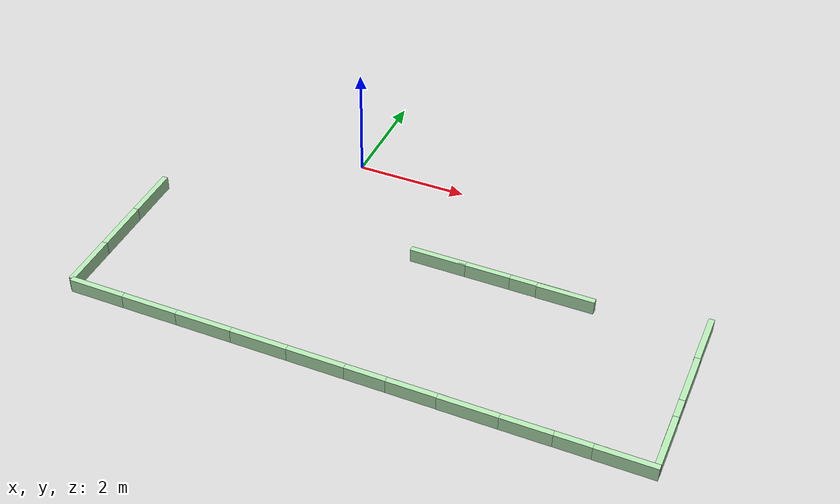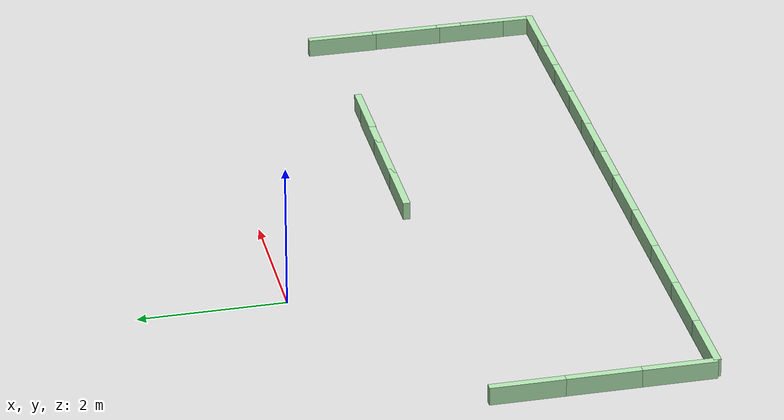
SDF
<sdf version="1.6">
 <world name="default">
  <model name="wall_100_25h_1_clone_9_clone_clone">
   <link name="link">
    <inertial>
     <mass>1</mass>
     <inertia>
      <ixx>0.166667</ixx>
      <ixy>0</ixy>
      <ixz>0</ixz>
      <iyy>0.166667</iyy>
      <iyz>0</iyz>
      <izz>0.166667</izz>
     </inertia>
    </inertial>
    <visual name="visual">
     <geometry><box><size>1 0.1 0.25</size></box></geometry>
     <material>
      <script><name>Gazebo/Grey</name><uri>file://media/materials/scripts/gazebo.material</uri></script>
      <ambient>0.3 0.5 0.3 1</ambient>
      <diffuse>0.7 0.9 0.7 1</diffuse>
      <specular>0.01 0.02 0.01 1</specular>
      <emissive>0 0 0 1</emissive>
      <lighting>1</lighting>
      <shader type="vertex"><normal_map>__default__</normal_map></shader>
     </material>
    </visual>
    <collision name="collision">
     <geometry><box><size>1 0.1 0.25</size></box></geometry>
     <surface>
      <friction>
       <ode><mu>1</mu><mu2>1</mu2><fdir1>0 0 0</fdir1><slip1>0</slip1><slip2>0</slip2></ode>
       <torsional>
        <coefficient>1</coefficient>
        <patch_radius>0</patch_radius>
        <surface_radius>0</surface_radius>
        <use_patch_radius>1</use_patch_radius>
        <ode><slip>0</slip></ode>
       </torsional>
      </friction>
      <bounce><restitution_coefficient>0</restitution_coefficient><threshold>1e+06</threshold></bounce>
      <contact>
       <collide_without_contact>0</collide_without_contact>
       <collide_without_contact_bitmask>1</collide_without_contact_bitmask>
       <collide_bitmask>1</collide_bitmask>
       <ode>
        <soft_cfm>0</soft_cfm>
        <soft_erp>0.2</soft_erp>
        <kp>1e+13</kp>
        <kd>1</kd>
        <max_vel>0.01</max_vel>
        <min_depth>0</min_depth>
       </ode>
       <bullet>
        <split_impulse>1</split_impulse>
        <split_impulse_penetration_threshold>-0.01</split_impulse_penetration_threshold>
        <soft_cfm>0</soft_cfm>
        <soft_erp>0.2</soft_erp>
        <kp>1e+13</kp>
        <kd>1</kd>
       </bullet>
      </contact>
     </surface>
    </collision>
   </link>
   <static>1</static>
   <pose>-3 -2.5 0.125 0 0.000404 -1.57111</pose>
  </model>
  <model name="wall_100_25h_1_clone_9_clone_clone_0">
   <link name="link">
    <inertial>
     <mass>1</mass>
     <inertia>
      <ixx>0.166667</ixx>
      <ixy>0</ixy>
      <ixz>0</ixz>
      <iyy>0.166667</iyy>
      <iyz>0</iyz>
      <izz>0.166667</izz>
     </inertia>
    </inertial>
    <visual name="visual">
     <geometry><box><size>1 0.1 0.25</size></box></geometry>
     <material>
      <script><name>Gazebo/Grey</name><uri>file://media/materials/scripts/gazebo.material</uri></script>
      <ambient>0.3 0.5 0.3 1</ambient>
      <diffuse>0.7 0.9 0.7 1</diffuse>
      <specular>0.01 0.02 0.01 1</specular>
      <emissive>0 0 0 1</emissive>
      <lighting>1</lighting>
      <shader type="vertex"><normal_map>__default__</normal_map></shader>
     </material>
    </visual>
    <collision name="collision">
     <geometry><box><size>1 0.1 0.25</size></box></geometry>
     <surface>
      <friction>
       <ode><mu>1</mu><mu2>1</mu2><fdir1>0 0 0</fdir1><slip1>0</slip1><slip2>0</slip2></ode>
       <torsional>
        <coefficient>1</coefficient>
        <patch_radius>0</patch_radius>
        <surface_radius>0</surface_radius>
        <use_patch_radius>1</use_patch_radius>
        <ode><slip>0</slip></ode>
       </torsional>
      </friction>
      <bounce><restitution_coefficient>0</restitution_coefficient><threshold>1e+06</threshold></bounce>
      <contact>
       <collide_without_contact>0</collide_without_contact>
       <collide_without_contact_bitmask>1</collide_without_contact_bitmask>
       <collide_bitmask>1</collide_bitmask>
       <ode>
        <soft_cfm>0</soft_cfm>
        <soft_erp>0.2</soft_erp>
        <kp>1e+13</kp>
        <kd>1</kd>
        <max_vel>0.01</max_vel>
        <min_depth>0</min_depth>
       </ode>
       <bullet>
        <split_impulse>1</split_impulse>
        <split_impulse_penetration_threshold>-0.01</split_impulse_penetration_threshold>
        <soft_cfm>0</soft_cfm>
        <soft_erp>0.2</soft_erp>
        <kp>1e+13</kp>
        <kd>1</kd>
       </bullet>
      </contact>
     </surface>
    </collision>
   </link>
   <static>1</static>
   <pose>-3 -3.5 0.125 0 0.000404 -1.57111</pose>
  </model>
  <model name="wall_100_25h_1_clone_9_clone_clone_1">
   <link name="link">
    <inertial>
     <mass>1</mass>
     <inertia>
      <ixx>0.166667</ixx>
      <ixy>0</ixy>
      <ixz>0</ixz>
      <iyy>0.166667</iyy>
      <iyz>0</iyz>
      <izz>0.166667</izz>
     </inertia>
    </inertial>
    <visual name="visual">
     <geometry><box><size>1 0.1 0.25</size></box></geometry>
     <material>
      <script><name>Gazebo/Grey</name><uri>file://media/materials/scripts/gazebo.material</uri></script>
      <ambient>0.3 0.5 0.3 1</ambient>
      <diffuse>0.7 0.9 0.7 1</diffuse>
      <specular>0.01 0.02 0.01 1</specular>
      <emissive>0 0 0 1</emissive>
      <lighting>1</lighting>
      <shader type="vertex"><normal_map>__default__</normal_map></shader>
     </material>
    </visual>
    <collision name="collision">
     <geometry><box><size>1 0.1 0.25</size></box></geometry>
     <surface>
      <friction>
       <ode><mu>1</mu><mu2>1</mu2><fdir1>0 0 0</fdir1><slip1>0</slip1><slip2>0</slip2></ode>
       <torsional>
        <coefficient>1</coefficient>
        <patch_radius>0</patch_radius>
        <surface_radius>0</surface_radius>
        <use_patch_radius>1</use_patch_radius>
        <ode><slip>0</slip></ode>
       </torsional>
      </friction>
      <bounce><restitution_coefficient>0</restitution_coefficient><threshold>1e+06</threshold></bounce>
      <contact>
       <collide_without_contact>0</collide_without_contact>
       <collide_without_contact_bitmask>1</collide_without_contact_bitmask>
       <collide_bitmask>1</collide_bitmask>
       <ode>
        <soft_cfm>0</soft_cfm>
        <soft_erp>0.2</soft_erp>
        <kp>1e+13</kp>
        <kd>1</kd>
        <max_vel>0.01</max_vel>
        <min_depth>0</min_depth>
       </ode>
       <bullet>
        <split_impulse>1</split_impulse>
        <split_impulse_penetration_threshold>-0.01</split_impulse_penetration_threshold>
        <soft_cfm>0</soft_cfm>
        <soft_erp>0.2</soft_erp>
        <kp>1e+13</kp>
        <kd>1</kd>
       </bullet>
      </contact>
     </surface>
    </collision>
   </link>
   <static>1</static>
   <pose>-3 -4.5 0.125 0 0.000404 -1.57111</pose>
  </model>
  <model name="wall_100_25h_1_clone_3_clone">
   <link name="link">
    <inertial>
     <mass>1</mass>
     <inertia>
      <ixx>0.166667</ixx>
      <ixy>0</ixy>
      <ixz>0</ixz>
      <iyy>0.166667</iyy>
      <iyz>0</iyz>
      <izz>0.166667</izz>
     </inertia>
    </inertial>
    <visual name="visual">
     <geometry><box><size>1 0.1 0.25</size></box></geometry>
     <material>
      <script><name>Gazebo/Grey</name><uri>file://media/materials/scripts/gazebo.material</uri></script>
      <ambient>0.3 0.5 0.3 1</ambient>
      <diffuse>0.7 0.9 0.7 1</diffuse>
      <specular>0.01 0.02 0.01 1</specular>
      <emissive>0 0 0 1</emissive>
      <lighting>1</lighting>
      <shader type="vertex"><normal_map>__default__</normal_map></shader>
     </material>
    </visual>
    <collision name="collision">
     <geometry><box><size>1 0.1 0.25</size></box></geometry>
     <surface>
      <friction>
       <ode><mu>1</mu><mu2>1</mu2><fdir1>0 0 0</fdir1><slip1>0</slip1><slip2>0</slip2></ode>
       <torsional>
        <coefficient>1</coefficient>
        <patch_radius>0</patch_radius>
        <surface_radius>0</surface_radius>
        <use_patch_radius>1</use_patch_radius>
        <ode><slip>0</slip></ode>
       </torsional>
      </friction>
      <bounce><restitution_coefficient>0</restitution_coefficient><threshold>1e+06</threshold></bounce>
      <contact>
       <collide_without_contact>0</collide_without_contact>
       <collide_without_contact_bitmask>1</collide_without_contact_bitmask>
       <collide_bitmask>1</collide_bitmask>
       <ode>
        <soft_cfm>0</soft_cfm>
        <soft_erp>0.2</soft_erp>
        <kp>1e+13</kp>
        <kd>1</kd>
        <max_vel>0.01</max_vel>
        <min_depth>0</min_depth>
       </ode>
       <bullet>
        <split_impulse>1</split_impulse>
        <split_impulse_penetration_threshold>-0.01</split_impulse_penetration_threshold>
        <soft_cfm>0</soft_cfm>
        <soft_erp>0.2</soft_erp>
        <kp>1e+13</kp>
        <kd>1</kd>
       </bullet>
      </contact>
     </surface>
    </collision>
   </link>
   <static>1</static>
   <pose>-2.5 -5 0.125 0.000404 -0 0</pose>
  </model>
  <model name="wall_100_25h_1_clone_3_clone_0">
   <link name="link">
    <inertial>
     <mass>1</mass>
     <inertia>
      <ixx>0.166667</ixx>
      <ixy>0</ixy>
      <ixz>0</ixz>
      <iyy>0.166667</iyy>
      <iyz>0</iyz>
      <izz>0.166667</izz>
     </inertia>
    </inertial>
    <visual name="visual">
     <geometry><box><size>1 0.1 0.25</size></box></geometry>
     <material>
      <script><name>Gazebo/Grey</name><uri>file://media/materials/scripts/gazebo.material</uri></script>
      <ambient>0.3 0.5 0.3 1</ambient>
      <diffuse>0.7 0.9 0.7 1</diffuse>
      <specular>0.01 0.02 0.01 1</specular>
      <emissive>0 0 0 1</emissive>
      <lighting>1</lighting>
      <shader type="vertex"><normal_map>__default__</normal_map></shader>
     </material>
    </visual>
    <collision name="collision">
     <geometry><box><size>1 0.1 0.25</size></box></geometry>
     <surface>
      <friction>
       <ode><mu>1</mu><mu2>1</mu2><fdir1>0 0 0</fdir1><slip1>0</slip1><slip2>0</slip2></ode>
       <torsional>
        <coefficient>1</coefficient>
        <patch_radius>0</patch_radius>
        <surface_radius>0</surface_radius>
        <use_patch_radius>1</use_patch_radius>
        <ode><slip>0</slip></ode>
       </torsional>
      </friction>
      <bounce><restitution_coefficient>0</restitution_coefficient><threshold>1e+06</threshold></bounce>
      <contact>
       <collide_without_contact>0</collide_without_contact>
       <collide_without_contact_bitmask>1</collide_without_contact_bitmask>
       <collide_bitmask>1</collide_bitmask>
       <ode>
        <soft_cfm>0</soft_cfm>
        <soft_erp>0.2</soft_erp>
        <kp>1e+13</kp>
        <kd>1</kd>
        <max_vel>0.01</max_vel>
        <min_depth>0</min_depth>
       </ode>
       <bullet>
        <split_impulse>1</split_impulse>
        <split_impulse_penetration_threshold>-0.01</split_impulse_penetration_threshold>
        <soft_cfm>0</soft_cfm>
        <soft_erp>0.2</soft_erp>
        <kp>1e+13</kp>
        <kd>1</kd>
       </bullet>
      </contact>
     </surface>
    </collision>
   </link>
   <static>1</static>
   <pose>-1.5 -5 0.125 0.000404 -0 0</pose>
  </model>
  <model name="wall_100_25h_1_clone_3_clone_1">
   <link name="link">
    <inertial>
     <mass>1</mass>
     <inertia>
      <ixx>0.166667</ixx>
      <ixy>0</ixy>
      <ixz>0</ixz>
      <iyy>0.166667</iyy>
      <iyz>0</iyz>
      <izz>0.166667</izz>
     </inertia>
    </inertial>
    <visual name="visual">
     <geometry><box><size>1 0.1 0.25</size></box></geometry>
     <material>
      <script><name>Gazebo/Grey</name><uri>file://media/materials/scripts/gazebo.material</uri></script>
      <ambient>0.3 0.5 0.3 1</ambient>
      <diffuse>0.7 0.9 0.7 1</diffuse>
      <specular>0.01 0.02 0.01 1</specular>
      <emissive>0 0 0 1</emissive>
      <lighting>1</lighting>
      <shader type="vertex"><normal_map>__default__</normal_map></shader>
     </material>
    </visual>
    <collision name="collision">
     <geometry><box><size>1 0.1 0.25</size></box></geometry>
     <surface>
      <friction>
       <ode><mu>1</mu><mu2>1</mu2><fdir1>0 0 0</fdir1><slip1>0</slip1><slip2>0</slip2></ode>
       <torsional>
        <coefficient>1</coefficient>
        <patch_radius>0</patch_radius>
        <surface_radius>0</surface_radius>
        <use_patch_radius>1</use_patch_radius>
        <ode><slip>0</slip></ode>
       </torsional>
      </friction>
      <bounce><restitution_coefficient>0</restitution_coefficient><threshold>1e+06</threshold></bounce>
      <contact>
       <collide_without_contact>0</collide_without_contact>
       <collide_without_contact_bitmask>1</collide_without_contact_bitmask>
       <collide_bitmask>1</collide_bitmask>
       <ode>
        <soft_cfm>0</soft_cfm>
        <soft_erp>0.2</soft_erp>
        <kp>1e+13</kp>
        <kd>1</kd>
        <max_vel>0.01</max_vel>
        <min_depth>0</min_depth>
       </ode>
       <bullet>
        <split_impulse>1</split_impulse>
        <split_impulse_penetration_threshold>-0.01</split_impulse_penetration_threshold>
        <soft_cfm>0</soft_cfm>
        <soft_erp>0.2</soft_erp>
        <kp>1e+13</kp>
        <kd>1</kd>
       </bullet>
      </contact>
     </surface>
    </collision>
   </link>
   <static>1</static>
   <pose>-0.5 -5 0.125 0.000404 -0 0</pose>
  </model>
  <model name="wall_100_25h_1_clone_3_clone_2">
   <link name="link">
    <inertial>
     <mass>1</mass>
     <inertia>
      <ixx>0.166667</ixx>
      <ixy>0</ixy>
      <ixz>0</ixz>
      <iyy>0.166667</iyy>
      <iyz>0</iyz>
      <izz>0.166667</izz>
     </inertia>
    </inertial>
    <visual name="visual">
     <geometry><box><size>1 0.1 0.25</size></box></geometry>
     <material>
      <script><name>Gazebo/Grey</name><uri>file://media/materials/scripts/gazebo.material</uri></script>
      <ambient>0.3 0.5 0.3 1</ambient>
      <diffuse>0.7 0.9 0.7 1</diffuse>
      <specular>0.01 0.02 0.01 1</specular>
      <emissive>0 0 0 1</emissive>
      <lighting>1</lighting>
      <shader type="vertex"><normal_map>__default__</normal_map></shader>
     </material>
    </visual>
    <collision name="collision">
     <geometry><box><size>1 0.1 0.25</size></box></geometry>
     <surface>
      <friction>
       <ode><mu>1</mu><mu2>1</mu2><fdir1>0 0 0</fdir1><slip1>0</slip1><slip2>0</slip2></ode>
       <torsional>
        <coefficient>1</coefficient>
        <patch_radius>0</patch_radius>
        <surface_radius>0</surface_radius>
        <use_patch_radius>1</use_patch_radius>
        <ode><slip>0</slip></ode>
       </torsional>
      </friction>
      <bounce><restitution_coefficient>0</restitution_coefficient><threshold>1e+06</threshold></bounce>
      <contact>
       <collide_without_contact>0</collide_without_contact>
       <collide_without_contact_bitmask>1</collide_without_contact_bitmask>
       <collide_bitmask>1</collide_bitmask>
       <ode>
        <soft_cfm>0</soft_cfm>
        <soft_erp>0.2</soft_erp>
        <kp>1e+13</kp>
        <kd>1</kd>
        <max_vel>0.01</max_vel>
        <min_depth>0</min_depth>
       </ode>
       <bullet>
        <split_impulse>1</split_impulse>
        <split_impulse_penetration_threshold>-0.01</split_impulse_penetration_threshold>
        <soft_cfm>0</soft_cfm>
        <soft_erp>0.2</soft_erp>
        <kp>1e+13</kp>
        <kd>1</kd>
       </bullet>
      </contact>
     </surface>
    </collision>
   </link>
   <static>1</static>
   <pose>0.5 -5 0.125 0.000404 -0 0</pose>
  </model>
  <model name="wall_100_25h_1_clone_3_clone_3">
   <link name="link">
    <inertial>
     <mass>1</mass>
     <inertia>
      <ixx>0.166667</ixx>
      <ixy>0</ixy>
      <ixz>0</ixz>
      <iyy>0.166667</iyy>
      <iyz>0</iyz>
      <izz>0.166667</izz>
     </inertia>
    </inertial>
    <visual name="visual">
     <geometry><box><size>1 0.1 0.25</size></box></geometry>
     <material>
      <script><name>Gazebo/Grey</name><uri>file://media/materials/scripts/gazebo.material</uri></script>
      <ambient>0.3 0.5 0.3 1</ambient>
      <diffuse>0.7 0.9 0.7 1</diffuse>
      <specular>0.01 0.02 0.01 1</specular>
      <emissive>0 0 0 1</emissive>
      <lighting>1</lighting>
      <shader type="vertex"><normal_map>__default__</normal_map></shader>
     </material>
    </visual>
    <collision name="collision">
     <geometry><box><size>1 0.1 0.25</size></box></geometry>
     <surface>
      <friction>
       <ode><mu>1</mu><mu2>1</mu2><fdir1>0 0 0</fdir1><slip1>0</slip1><slip2>0</slip2></ode>
       <torsional>
        <coefficient>1</coefficient>
        <patch_radius>0</patch_radius>
        <surface_radius>0</surface_radius>
        <use_patch_radius>1</use_patch_radius>
        <ode><slip>0</slip></ode>
       </torsional>
      </friction>
      <bounce><restitution_coefficient>0</restitution_coefficient><threshold>1e+06</threshold></bounce>
      <contact>
       <collide_without_contact>0</collide_without_contact>
       <collide_without_contact_bitmask>1</collide_without_contact_bitmask>
       <collide_bitmask>1</collide_bitmask>
       <ode>
        <soft_cfm>0</soft_cfm>
        <soft_erp>0.2</soft_erp>
        <kp>1e+13</kp>
        <kd>1</kd>
        <max_vel>0.01</max_vel>
        <min_depth>0</min_depth>
       </ode>
       <bullet>
        <split_impulse>1</split_impulse>
        <split_impulse_penetration_threshold>-0.01</split_impulse_penetration_threshold>
        <soft_cfm>0</soft_cfm>
        <soft_erp>0.2</soft_erp>
        <kp>1e+13</kp>
        <kd>1</kd>
       </bullet>
      </contact>
     </surface>
    </collision>
   </link>
   <static>1</static>
   <pose>1.5 -5 0.125 0.000404 -0 0</pose>
  </model>
  <model name="wall_100_25h_1_clone_3_clone_4">
   <link name="link">
    <inertial>
     <mass>1</mass>
     <inertia>
      <ixx>0.166667</ixx>
      <ixy>0</ixy>
      <ixz>0</ixz>
      <iyy>0.166667</iyy>
      <iyz>0</iyz>
      <izz>0.166667</izz>
     </inertia>
    </inertial>
    <visual name="visual">
     <geometry><box><size>1 0.1 0.25</size></box></geometry>
     <material>
      <script><name>Gazebo/Grey</name><uri>file://media/materials/scripts/gazebo.material</uri></script>
      <ambient>0.3 0.5 0.3 1</ambient>
      <diffuse>0.7 0.9 0.7 1</diffuse>
      <specular>0.01 0.02 0.01 1</specular>
      <emissive>0 0 0 1</emissive>
      <lighting>1</lighting>
      <shader type="vertex"><normal_map>__default__</normal_map></shader>
     </material>
    </visual>
    <collision name="collision">
     <geometry><box><size>1 0.1 0.25</size></box></geometry>
     <surface>
      <friction>
       <ode><mu>1</mu><mu2>1</mu2><fdir1>0 0 0</fdir1><slip1>0</slip1><slip2>0</slip2></ode>
       <torsional>
        <coefficient>1</coefficient>
        <patch_radius>0</patch_radius>
        <surface_radius>0</surface_radius>
        <use_patch_radius>1</use_patch_radius>
        <ode><slip>0</slip></ode>
       </torsional>
      </friction>
      <bounce><restitution_coefficient>0</restitution_coefficient><threshold>1e+06</threshold></bounce>
      <contact>
       <collide_without_contact>0</collide_without_contact>
       <collide_without_contact_bitmask>1</collide_without_contact_bitmask>
       <collide_bitmask>1</collide_bitmask>
       <ode>
        <soft_cfm>0</soft_cfm>
        <soft_erp>0.2</soft_erp>
        <kp>1e+13</kp>
        <kd>1</kd>
        <max_vel>0.01</max_vel>
        <min_depth>0</min_depth>
       </ode>
       <bullet>
        <split_impulse>1</split_impulse>
        <split_impulse_penetration_threshold>-0.01</split_impulse_penetration_threshold>
        <soft_cfm>0</soft_cfm>
        <soft_erp>0.2</soft_erp>
        <kp>1e+13</kp>
        <kd>1</kd>
       </bullet>
      </contact>
     </surface>
    </collision>
   </link>
   <static>1</static>
   <pose>2.5 -5 0.125 0.000404 -0 0</pose>
  </model>
  <model name="wall_100_25h_1_clone_7_clone_clone_2">
   <link name="link">
    <inertial>
     <mass>1</mass>
     <inertia>
      <ixx>0.166667</ixx>
      <ixy>0</ixy>
      <ixz>0</ixz>
      <iyy>0.166667</iyy>
      <iyz>0</iyz>
      <izz>0.166667</izz>
     </inertia>
    </inertial>
    <visual name="visual">
     <geometry><box><size>1 0.1 0.25</size></box></geometry>
     <material>
      <script><name>Gazebo/Grey</name><uri>file://media/materials/scripts/gazebo.material</uri></script>
      <ambient>0.3 0.5 0.3 1</ambient>
      <diffuse>0.7 0.9 0.7 1</diffuse>
      <specular>0.01 0.02 0.01 1</specular>
      <emissive>0 0 0 1</emissive>
      <lighting>1</lighting>
      <shader type="vertex"><normal_map>__default__</normal_map></shader>
     </material>
    </visual>
    <collision name="collision">
     <geometry><box><size>1 0.1 0.25</size></box></geometry>
     <surface>
      <friction>
       <ode><mu>1</mu><mu2>1</mu2><fdir1>0 0 0</fdir1><slip1>0</slip1><slip2>0</slip2></ode>
       <torsional>
        <coefficient>1</coefficient>
        <patch_radius>0</patch_radius>
        <surface_radius>0</surface_radius>
        <use_patch_radius>1</use_patch_radius>
        <ode><slip>0</slip></ode>
       </torsional>
      </friction>
      <bounce><restitution_coefficient>0</restitution_coefficient><threshold>1e+06</threshold></bounce>
      <contact>
       <collide_without_contact>0</collide_without_contact>
       <collide_without_contact_bitmask>1</collide_without_contact_bitmask>
       <collide_bitmask>1</collide_bitmask>
       <ode>
        <soft_cfm>0</soft_cfm>
        <soft_erp>0.2</soft_erp>
        <kp>1e+13</kp>
        <kd>1</kd>
        <max_vel>0.01</max_vel>
        <min_depth>0</min_depth>
       </ode>
       <bullet>
        <split_impulse>1</split_impulse>
        <split_impulse_penetration_threshold>-0.01</split_impulse_penetration_threshold>
        <soft_cfm>0</soft_cfm>
        <soft_erp>0.2</soft_erp>
        <kp>1e+13</kp>
        <kd>1</kd>
       </bullet>
      </contact>
     </surface>
    </collision>
   </link>
   <static>1</static>
   <pose>2.34861 -2.01817 0.125 0.000404 -0 0</pose>
  </model>
  <model name="wall_100_25h_1_clone_7_clone_clone_3">
   <link name="link">
    <inertial>
     <mass>1</mass>
     <inertia>
      <ixx>0.166667</ixx>
      <ixy>0</ixy>
      <ixz>0</ixz>
      <iyy>0.166667</iyy>
      <iyz>0</iyz>
      <izz>0.166667</izz>
     </inertia>
    </inertial>
    <visual name="visual">
     <geometry><box><size>1 0.1 0.25</size></box></geometry>
     <material>
      <script><name>Gazebo/Grey</name><uri>file://media/materials/scripts/gazebo.material</uri></script>
      <ambient>0.3 0.5 0.3 1</ambient>
      <diffuse>0.7 0.9 0.7 1</diffuse>
      <specular>0.01 0.02 0.01 1</specular>
      <emissive>0 0 0 1</emissive>
      <lighting>1</lighting>
      <shader type="vertex"><normal_map>__default__</normal_map></shader>
     </material>
    </visual>
    <collision name="collision">
     <geometry><box><size>1 0.1 0.25</size></box></geometry>
     <surface>
      <friction>
       <ode><mu>1</mu><mu2>1</mu2><fdir1>0 0 0</fdir1><slip1>0</slip1><slip2>0</slip2></ode>
       <torsional>
        <coefficient>1</coefficient>
        <patch_radius>0</patch_radius>
        <surface_radius>0</surface_radius>
        <use_patch_radius>1</use_patch_radius>
        <ode><slip>0</slip></ode>
       </torsional>
      </friction>
      <bounce><restitution_coefficient>0</restitution_coefficient><threshold>1e+06</threshold></bounce>
      <contact>
       <collide_without_contact>0</collide_without_contact>
       <collide_without_contact_bitmask>1</collide_without_contact_bitmask>
       <collide_bitmask>1</collide_bitmask>
       <ode>
        <soft_cfm>0</soft_cfm>
        <soft_erp>0.2</soft_erp>
        <kp>1e+13</kp>
        <kd>1</kd>
        <max_vel>0.01</max_vel>
        <min_depth>0</min_depth>
       </ode>
       <bullet>
        <split_impulse>1</split_impulse>
        <split_impulse_penetration_threshold>-0.01</split_impulse_penetration_threshold>
        <soft_cfm>0</soft_cfm>
        <soft_erp>0.2</soft_erp>
        <kp>1e+13</kp>
        <kd>1</kd>
       </bullet>
      </contact>
     </surface>
    </collision>
   </link>
   <static>1</static>
   <pose>3.2209 -2.01804 0.125 0.000404 -0 0</pose>
  </model>
  <model name="wall_100_25h_1_clone_7_clone_clone_4">
   <link name="link">
    <inertial>
     <mass>1</mass>
     <inertia>
      <ixx>0.166667</ixx>
      <ixy>0</ixy>
      <ixz>0</ixz>
      <iyy>0.166667</iyy>
      <iyz>0</iyz>
      <izz>0.166667</izz>
     </inertia>
    </inertial>
    <visual name="visual">
     <geometry><box><size>1 0.1 0.25</size></box></geometry>
     <material>
      <script><name>Gazebo/Grey</name><uri>file://media/materials/scripts/gazebo.material</uri></script>
      <ambient>0.3 0.5 0.3 1</ambient>
      <diffuse>0.7 0.9 0.7 1</diffuse>
      <specular>0.01 0.02 0.01 1</specular>
      <emissive>0 0 0 1</emissive>
      <lighting>1</lighting>
      <shader type="vertex"><normal_map>__default__</normal_map></shader>
     </material>
    </visual>
    <collision name="collision">
     <geometry><box><size>1 0.1 0.25</size></box></geometry>
     <surface>
      <friction>
       <ode><mu>1</mu><mu2>1</mu2><fdir1>0 0 0</fdir1><slip1>0</slip1><slip2>0</slip2></ode>
       <torsional>
        <coefficient>1</coefficient>
        <patch_radius>0</patch_radius>
        <surface_radius>0</surface_radius>
        <use_patch_radius>1</use_patch_radius>
        <ode><slip>0</slip></ode>
       </torsional>
      </friction>
      <bounce><restitution_coefficient>0</restitution_coefficient><threshold>1e+06</threshold></bounce>
      <contact>
       <collide_without_contact>0</collide_without_contact>
       <collide_without_contact_bitmask>1</collide_without_contact_bitmask>
       <collide_bitmask>1</collide_bitmask>
       <ode>
        <soft_cfm>0</soft_cfm>
        <soft_erp>0.2</soft_erp>
        <kp>1e+13</kp>
        <kd>1</kd>
        <max_vel>0.01</max_vel>
        <min_depth>0</min_depth>
       </ode>
       <bullet>
        <split_impulse>1</split_impulse>
        <split_impulse_penetration_threshold>-0.01</split_impulse_penetration_threshold>
        <soft_cfm>0</soft_cfm>
        <soft_erp>0.2</soft_erp>
        <kp>1e+13</kp>
        <kd>1</kd>
       </bullet>
      </contact>
     </surface>
    </collision>
   </link>
   <static>1</static>
   <pose>4.139 -2.01913 0.125 0.000404 -0 0</pose>
  </model>
  <model name="wall_100_25h_1_clone_7_clone_clone_4_clone">
   <link name="link">
    <inertial>
     <mass>1</mass>
     <inertia>
      <ixx>0.166667</ixx>
      <ixy>0</ixy>
      <ixz>0</ixz>
      <iyy>0.166667</iyy>
      <iyz>0</iyz>
      <izz>0.166667</izz>
     </inertia>
    </inertial>
    <visual name="visual">
     <geometry><box><size>1 0.1 0.25</size></box></geometry>
     <material>
      <script><name>Gazebo/Grey</name><uri>file://media/materials/scripts/gazebo.material</uri></script>
      <ambient>0.3 0.5 0.3 1</ambient>
      <diffuse>0.7 0.9 0.7 1</diffuse>
      <specular>0.01 0.02 0.01 1</specular>
      <emissive>0 0 0 1</emissive>
      <lighting>1</lighting>
      <shader type="vertex"><normal_map>__default__</normal_map></shader>
     </material>
    </visual>
    <collision name="collision">
     <geometry><box><size>1 0.1 0.25</size></box></geometry>
     <surface>
      <friction>
       <ode><mu>1</mu><mu2>1</mu2><fdir1>0 0 0</fdir1><slip1>0</slip1><slip2>0</slip2></ode>
       <torsional>
        <coefficient>1</coefficient>
        <patch_radius>0</patch_radius>
        <surface_radius>0</surface_radius>
        <use_patch_radius>1</use_patch_radius>
        <ode><slip>0</slip></ode>
       </torsional>
      </friction>
      <bounce><restitution_coefficient>0</restitution_coefficient><threshold>1e+06</threshold></bounce>
      <contact>
       <collide_without_contact>0</collide_without_contact>
       <collide_without_contact_bitmask>1</collide_without_contact_bitmask>
       <collide_bitmask>1</collide_bitmask>
       <ode>
        <soft_cfm>0</soft_cfm>
        <soft_erp>0.2</soft_erp>
        <kp>1e+13</kp>
        <kd>1</kd>
        <max_vel>0.01</max_vel>
        <min_depth>0</min_depth>
       </ode>
       <bullet>
        <split_impulse>1</split_impulse>
        <split_impulse_penetration_threshold>-0.01</split_impulse_penetration_threshold>
        <soft_cfm>0</soft_cfm>
        <soft_erp>0.2</soft_erp>
        <kp>1e+13</kp>
        <kd>1</kd>
       </bullet>
      </contact>
     </surface>
    </collision>
   </link>
   <static>1</static>
   <pose>4.60717 -2.02678 0.125 0.000404 -0 0</pose>
  </model>
  <model name="wall_100_25h_1_clone_9_clone_clone_0_clone_2_clone_clone_1_clone_1_clone_6">
   <link name="link">
    <inertial>
     <mass>1</mass>
     <inertia>
      <ixx>0.166667</ixx>
      <ixy>0</ixy>
      <ixz>0</ixz>
      <iyy>0.166667</iyy>
      <iyz>0</iyz>
      <izz>0.166667</izz>
     </inertia>
    </inertial>
    <visual name="visual">
     <geometry><box><size>1 0.1 0.25</size></box></geometry>
     <material>
      <script><name>Gazebo/Grey</name><uri>file://media/materials/scripts/gazebo.material</uri></script>
      <ambient>0.3 0.5 0.3 1</ambient>
      <diffuse>0.7 0.9 0.7 1</diffuse>
      <specular>0.01 0.02 0.01 1</specular>
      <emissive>0 0 0 1</emissive>
      <lighting>1</lighting>
      <shader type="vertex"><normal_map>__default__</normal_map></shader>
     </material>
    </visual>
    <collision name="collision">
     <geometry><box><size>1 0.1 0.25</size></box></geometry>
     <surface>
      <friction>
       <ode><mu>1</mu><mu2>1</mu2><fdir1>0 0 0</fdir1><slip1>0</slip1><slip2>0</slip2></ode>
       <torsional>
        <coefficient>1</coefficient>
        <patch_radius>0</patch_radius>
        <surface_radius>0</surface_radius>
        <use_patch_radius>1</use_patch_radius>
        <ode><slip>0</slip></ode>
       </torsional>
      </friction>
      <bounce><restitution_coefficient>0</restitution_coefficient><threshold>1e+06</threshold></bounce>
      <contact>
       <collide_without_contact>0</collide_without_contact>
       <collide_without_contact_bitmask>1</collide_without_contact_bitmask>
       <collide_bitmask>1</collide_bitmask>
       <ode>
        <soft_cfm>0</soft_cfm>
        <soft_erp>0.2</soft_erp>
        <kp>1e+13</kp>
        <kd>1</kd>
        <max_vel>0.01</max_vel>
        <min_depth>0</min_depth>
       </ode>
       <bullet>
        <split_impulse>1</split_impulse>
        <split_impulse_penetration_threshold>-0.01</split_impulse_penetration_threshold>
        <soft_cfm>0</soft_cfm>
        <soft_erp>0.2</soft_erp>
        <kp>1e+13</kp>
        <kd>1</kd>
       </bullet>
      </contact>
     </surface>
    </collision>
   </link>
   <static>1</static>
   <pose>6.94103 -2.18 0.125 0 0.000404 -1.57111</pose>
  </model>
  <model name="wall_100_25h_1_clone_9_clone_clone_0_clone_2_clone_clone_1_clone_1_clone_7">
   <link name="link">
    <inertial>
     <mass>1</mass>
     <inertia>
      <ixx>0.166667</ixx>
      <ixy>0</ixy>
      <ixz>0</ixz>
      <iyy>0.166667</iyy>
      <iyz>0</iyz>
      <izz>0.166667</izz>
     </inertia>
    </inertial>
    <visual name="visual">
     <geometry><box><size>1 0.1 0.25</size></box></geometry>
     <material>
      <script><name>Gazebo/Grey</name><uri>file://media/materials/scripts/gazebo.material</uri></script>
      <ambient>0.3 0.5 0.3 1</ambient>
      <diffuse>0.7 0.9 0.7 1</diffuse>
      <specular>0.01 0.02 0.01 1</specular>
      <emissive>0 0 0 1</emissive>
      <lighting>1</lighting>
      <shader type="vertex"><normal_map>__default__</normal_map></shader>
     </material>
    </visual>
    <collision name="collision">
     <geometry><box><size>1 0.1 0.25</size></box></geometry>
     <surface>
      <friction>
       <ode><mu>1</mu><mu2>1</mu2><fdir1>0 0 0</fdir1><slip1>0</slip1><slip2>0</slip2></ode>
       <torsional>
        <coefficient>1</coefficient>
        <patch_radius>0</patch_radius>
        <surface_radius>0</surface_radius>
        <use_patch_radius>1</use_patch_radius>
        <ode><slip>0</slip></ode>
       </torsional>
      </friction>
      <bounce><restitution_coefficient>0</restitution_coefficient><threshold>1e+06</threshold></bounce>
      <contact>
       <collide_without_contact>0</collide_without_contact>
       <collide_without_contact_bitmask>1</collide_without_contact_bitmask>
       <collide_bitmask>1</collide_bitmask>
       <ode>
        <soft_cfm>0</soft_cfm>
        <soft_erp>0.2</soft_erp>
        <kp>1e+13</kp>
        <kd>1</kd>
        <max_vel>0.01</max_vel>
        <min_depth>0</min_depth>
       </ode>
       <bullet>
        <split_impulse>1</split_impulse>
        <split_impulse_penetration_threshold>-0.01</split_impulse_penetration_threshold>
        <soft_cfm>0</soft_cfm>
        <soft_erp>0.2</soft_erp>
        <kp>1e+13</kp>
        <kd>1</kd>
       </bullet>
      </contact>
     </surface>
    </collision>
   </link>
   <static>1</static>
   <pose>6.94709 -3.13054 0.125 0 0.000404 -1.57111</pose>
  </model>
  <model name="wall_100_25h_1_clone_9_clone_clone_0_clone_2_clone_clone_1_clone_1_clone_8">
   <link name="link">
    <inertial>
     <mass>1</mass>
     <inertia>
      <ixx>0.166667</ixx>
      <ixy>0</ixy>
      <ixz>0</ixz>
      <iyy>0.166667</iyy>
      <iyz>0</iyz>
      <izz>0.166667</izz>
     </inertia>
    </inertial>
    <visual name="visual">
     <geometry><box><size>1 0.1 0.25</size></box></geometry>
     <material>
      <script><name>Gazebo/Grey</name><uri>file://media/materials/scripts/gazebo.material</uri></script>
      <ambient>0.3 0.5 0.3 1</ambient>
      <diffuse>0.7 0.9 0.7 1</diffuse>
      <specular>0.01 0.02 0.01 1</specular>
      <emissive>0 0 0 1</emissive>
      <lighting>1</lighting>
      <shader type="vertex"><normal_map>__default__</normal_map></shader>
     </material>
    </visual>
    <collision name="collision">
     <geometry><box><size>1 0.1 0.25</size></box></geometry>
     <surface>
      <friction>
       <ode><mu>1</mu><mu2>1</mu2><fdir1>0 0 0</fdir1><slip1>0</slip1><slip2>0</slip2></ode>
       <torsional>
        <coefficient>1</coefficient>
        <patch_radius>0</patch_radius>
        <surface_radius>0</surface_radius>
        <use_patch_radius>1</use_patch_radius>
        <ode><slip>0</slip></ode>
       </torsional>
      </friction>
      <bounce><restitution_coefficient>0</restitution_coefficient><threshold>1e+06</threshold></bounce>
      <contact>
       <collide_without_contact>0</collide_without_contact>
       <collide_without_contact_bitmask>1</collide_without_contact_bitmask>
       <collide_bitmask>1</collide_bitmask>
       <ode>
        <soft_cfm>0</soft_cfm>
        <soft_erp>0.2</soft_erp>
        <kp>1e+13</kp>
        <kd>1</kd>
        <max_vel>0.01</max_vel>
        <min_depth>0</min_depth>
       </ode>
       <bullet>
        <split_impulse>1</split_impulse>
        <split_impulse_penetration_threshold>-0.01</split_impulse_penetration_threshold>
        <soft_cfm>0</soft_cfm>
        <soft_erp>0.2</soft_erp>
        <kp>1e+13</kp>
        <kd>1</kd>
       </bullet>
      </contact>
     </surface>
    </collision>
   </link>
   <static>1</static>
   <pose>6.94802 -4.09497 0.125 0 0.000404 -1.57111</pose>
  </model>
  <model name="wall_100_25h_1_clone_9_clone_clone_0_clone_2_clone_clone_1_clone_1_clone_9">
   <link name="link">
    <inertial>
     <mass>1</mass>
     <inertia>
      <ixx>0.166667</ixx>
      <ixy>0</ixy>
      <ixz>0</ixz>
      <iyy>0.166667</iyy>
      <iyz>0</iyz>
      <izz>0.166667</izz>
     </inertia>
    </inertial>
    <visual name="visual">
     <geometry><box><size>1 0.1 0.25</size></box></geometry>
     <material>
      <script><name>Gazebo/Grey</name><uri>file://media/materials/scripts/gazebo.material</uri></script>
      <ambient>0.3 0.5 0.3 1</ambient>
      <diffuse>0.7 0.9 0.7 1</diffuse>
      <specular>0.01 0.02 0.01 1</specular>
      <emissive>0 0 0 1</emissive>
      <lighting>1</lighting>
      <shader type="vertex"><normal_map>__default__</normal_map></shader>
     </material>
    </visual>
    <collision name="collision">
     <geometry><box><size>1 0.1 0.25</size></box></geometry>
     <surface>
      <friction>
       <ode><mu>1</mu><mu2>1</mu2><fdir1>0 0 0</fdir1><slip1>0</slip1><slip2>0</slip2></ode>
       <torsional>
        <coefficient>1</coefficient>
        <patch_radius>0</patch_radius>
        <surface_radius>0</surface_radius>
        <use_patch_radius>1</use_patch_radius>
        <ode><slip>0</slip></ode>
       </torsional>
      </friction>
      <bounce><restitution_coefficient>0</restitution_coefficient><threshold>1e+06</threshold></bounce>
      <contact>
       <collide_without_contact>0</collide_without_contact>
       <collide_without_contact_bitmask>1</collide_without_contact_bitmask>
       <collide_bitmask>1</collide_bitmask>
       <ode>
        <soft_cfm>0</soft_cfm>
        <soft_erp>0.2</soft_erp>
        <kp>1e+13</kp>
        <kd>1</kd>
        <max_vel>0.01</max_vel>
        <min_depth>0</min_depth>
       </ode>
       <bullet>
        <split_impulse>1</split_impulse>
        <split_impulse_penetration_threshold>-0.01</split_impulse_penetration_threshold>
        <soft_cfm>0</soft_cfm>
        <soft_erp>0.2</soft_erp>
        <kp>1e+13</kp>
        <kd>1</kd>
       </bullet>
      </contact>
     </surface>
    </collision>
   </link>
   <static>1</static>
   <pose>6.95181 -4.4588 0.125 0 0.000404 -1.57111</pose>
  </model>
  <model name="wall_100_25h_1_clone_3_clone_4_clone">
   <link name="link">
    <inertial>
     <mass>1</mass>
     <inertia>
      <ixx>0.166667</ixx>
      <ixy>0</ixy>
      <ixz>0</ixz>
      <iyy>0.166667</iyy>
      <iyz>0</iyz>
      <izz>0.166667</izz>
     </inertia>
    </inertial>
    <visual name="visual">
     <geometry><box><size>1 0.1 0.25</size></box></geometry>
     <material>
      <script><name>Gazebo/Grey</name><uri>file://media/materials/scripts/gazebo.material</uri></script>
      <ambient>0.3 0.5 0.3 1</ambient>
      <diffuse>0.7 0.9 0.7 1</diffuse>
      <specular>0.01 0.02 0.01 1</specular>
      <emissive>0 0 0 1</emissive>
      <lighting>1</lighting>
      <shader type="vertex"><normal_map>__default__</normal_map></shader>
     </material>
    </visual>
    <collision name="collision">
     <geometry><box><size>1 0.1 0.25</size></box></geometry>
     <surface>
      <friction>
       <ode><mu>1</mu><mu2>1</mu2><fdir1>0 0 0</fdir1><slip1>0</slip1><slip2>0</slip2></ode>
       <torsional>
        <coefficient>1</coefficient>
        <patch_radius>0</patch_radius>
        <surface_radius>0</surface_radius>
        <use_patch_radius>1</use_patch_radius>
        <ode><slip>0</slip></ode>
       </torsional>
      </friction>
      <bounce><restitution_coefficient>0</restitution_coefficient><threshold>1e+06</threshold></bounce>
      <contact>
       <collide_without_contact>0</collide_without_contact>
       <collide_without_contact_bitmask>1</collide_without_contact_bitmask>
       <collide_bitmask>1</collide_bitmask>
       <ode>
        <soft_cfm>0</soft_cfm>
        <soft_erp>0.2</soft_erp>
        <kp>1e+13</kp>
        <kd>1</kd>
        <max_vel>0.01</max_vel>
        <min_depth>0</min_depth>
       </ode>
       <bullet>
        <split_impulse>1</split_impulse>
        <split_impulse_penetration_threshold>-0.01</split_impulse_penetration_threshold>
        <soft_cfm>0</soft_cfm>
        <soft_erp>0.2</soft_erp>
        <kp>1e+13</kp>
        <kd>1</kd>
       </bullet>
      </contact>
     </surface>
    </collision>
   </link>
   <static>1</static>
   <pose>3.19935 -5.00118 0.125 0.000404 -0 0</pose>
  </model>
  <model name="wall_100_25h_1_clone_3_clone_4_clone_0">
   <link name="link">
    <inertial>
     <mass>1</mass>
     <inertia>
      <ixx>0.166667</ixx>
      <ixy>0</ixy>
      <ixz>0</ixz>
      <iyy>0.166667</iyy>
      <iyz>0</iyz>
      <izz>0.166667</izz>
     </inertia>
    </inertial>
    <visual name="visual">
     <geometry><box><size>1 0.1 0.25</size></box></geometry>
     <material>
      <script><name>Gazebo/Grey</name><uri>file://media/materials/scripts/gazebo.material</uri></script>
      <ambient>0.3 0.5 0.3 1</ambient>
      <diffuse>0.7 0.9 0.7 1</diffuse>
      <specular>0.01 0.02 0.01 1</specular>
      <emissive>0 0 0 1</emissive>
      <lighting>1</lighting>
      <shader type="vertex"><normal_map>__default__</normal_map></shader>
     </material>
    </visual>
    <collision name="collision">
     <geometry><box><size>1 0.1 0.25</size></box></geometry>
     <surface>
      <friction>
       <ode><mu>1</mu><mu2>1</mu2><fdir1>0 0 0</fdir1><slip1>0</slip1><slip2>0</slip2></ode>
       <torsional>
        <coefficient>1</coefficient>
        <patch_radius>0</patch_radius>
        <surface_radius>0</surface_radius>
        <use_patch_radius>1</use_patch_radius>
        <ode><slip>0</slip></ode>
       </torsional>
      </friction>
      <bounce><restitution_coefficient>0</restitution_coefficient><threshold>1e+06</threshold></bounce>
      <contact>
       <collide_without_contact>0</collide_without_contact>
       <collide_without_contact_bitmask>1</collide_without_contact_bitmask>
       <collide_bitmask>1</collide_bitmask>
       <ode>
        <soft_cfm>0</soft_cfm>
        <soft_erp>0.2</soft_erp>
        <kp>1e+13</kp>
        <kd>1</kd>
        <max_vel>0.01</max_vel>
        <min_depth>0</min_depth>
       </ode>
       <bullet>
        <split_impulse>1</split_impulse>
        <split_impulse_penetration_threshold>-0.01</split_impulse_penetration_threshold>
        <soft_cfm>0</soft_cfm>
        <soft_erp>0.2</soft_erp>
        <kp>1e+13</kp>
        <kd>1</kd>
       </bullet>
      </contact>
     </surface>
    </collision>
   </link>
   <static>1</static>
   <pose>4.04593 -5.00445 0.125 0.000404 -0 0</pose>
  </model>
  <model name="wall_100_25h_1_clone_3_clone_4_clone_1">
   <link name="link">
    <inertial>
     <mass>1</mass>
     <inertia>
      <ixx>0.166667</ixx>
      <ixy>0</ixy>
      <ixz>0</ixz>
      <iyy>0.166667</iyy>
      <iyz>0</iyz>
      <izz>0.166667</izz>
     </inertia>
    </inertial>
    <visual name="visual">
     <geometry><box><size>1 0.1 0.25</size></box></geometry>
     <material>
      <script><name>Gazebo/Grey</name><uri>file://media/materials/scripts/gazebo.material</uri></script>
      <ambient>0.3 0.5 0.3 1</ambient>
      <diffuse>0.7 0.9 0.7 1</diffuse>
      <specular>0.01 0.02 0.01 1</specular>
      <emissive>0 0 0 1</emissive>
      <lighting>1</lighting>
      <shader type="vertex"><normal_map>__default__</normal_map></shader>
     </material>
    </visual>
    <collision name="collision">
     <geometry><box><size>1 0.1 0.25</size></box></geometry>
     <surface>
      <friction>
       <ode><mu>1</mu><mu2>1</mu2><fdir1>0 0 0</fdir1><slip1>0</slip1><slip2>0</slip2></ode>
       <torsional>
        <coefficient>1</coefficient>
        <patch_radius>0</patch_radius>
        <surface_radius>0</surface_radius>
        <use_patch_radius>1</use_patch_radius>
        <ode><slip>0</slip></ode>
       </torsional>
      </friction>
      <bounce><restitution_coefficient>0</restitution_coefficient><threshold>1e+06</threshold></bounce>
      <contact>
       <collide_without_contact>0</collide_without_contact>
       <collide_without_contact_bitmask>1</collide_without_contact_bitmask>
       <collide_bitmask>1</collide_bitmask>
       <ode>
        <soft_cfm>0</soft_cfm>
        <soft_erp>0.2</soft_erp>
        <kp>1e+13</kp>
        <kd>1</kd>
        <max_vel>0.01</max_vel>
        <min_depth>0</min_depth>
       </ode>
       <bullet>
        <split_impulse>1</split_impulse>
        <split_impulse_penetration_threshold>-0.01</split_impulse_penetration_threshold>
        <soft_cfm>0</soft_cfm>
        <soft_erp>0.2</soft_erp>
        <kp>1e+13</kp>
        <kd>1</kd>
       </bullet>
      </contact>
     </surface>
    </collision>
   </link>
   <static>1</static>
   <pose>4.89378 -5.0043 0.125 0.000404 -0 0</pose>
  </model>
  <model name="wall_100_25h_1_clone_3_clone_4_clone_2">
   <link name="link">
    <inertial>
     <mass>1</mass>
     <inertia>
      <ixx>0.166667</ixx>
      <ixy>0</ixy>
      <ixz>0</ixz>
      <iyy>0.166667</iyy>
      <iyz>0</iyz>
      <izz>0.166667</izz>
     </inertia>
    </inertial>
    <visual name="visual">
     <geometry><box><size>1 0.1 0.25</size></box></geometry>
     <material>
      <script><name>Gazebo/Grey</name><uri>file://media/materials/scripts/gazebo.material</uri></script>
      <ambient>0.3 0.5 0.3 1</ambient>
      <diffuse>0.7 0.9 0.7 1</diffuse>
      <specular>0.01 0.02 0.01 1</specular>
      <emissive>0 0 0 1</emissive>
      <lighting>1</lighting>
      <shader type="vertex"><normal_map>__default__</normal_map></shader>
     </material>
    </visual>
    <collision name="collision">
     <geometry><box><size>1 0.1 0.25</size></box></geometry>
     <surface>
      <friction>
       <ode><mu>1</mu><mu2>1</mu2><fdir1>0 0 0</fdir1><slip1>0</slip1><slip2>0</slip2></ode>
       <torsional>
        <coefficient>1</coefficient>
        <patch_radius>0</patch_radius>
        <surface_radius>0</surface_radius>
        <use_patch_radius>1</use_patch_radius>
        <ode><slip>0</slip></ode>
       </torsional>
      </friction>
      <bounce><restitution_coefficient>0</restitution_coefficient><threshold>1e+06</threshold></bounce>
      <contact>
       <collide_without_contact>0</collide_without_contact>
       <collide_without_contact_bitmask>1</collide_without_contact_bitmask>
       <collide_bitmask>1</collide_bitmask>
       <ode>
        <soft_cfm>0</soft_cfm>
        <soft_erp>0.2</soft_erp>
        <kp>1e+13</kp>
        <kd>1</kd>
        <max_vel>0.01</max_vel>
        <min_depth>0</min_depth>
       </ode>
       <bullet>
        <split_impulse>1</split_impulse>
        <split_impulse_penetration_threshold>-0.01</split_impulse_penetration_threshold>
        <soft_cfm>0</soft_cfm>
        <soft_erp>0.2</soft_erp>
        <kp>1e+13</kp>
        <kd>1</kd>
       </bullet>
      </contact>
     </surface>
    </collision>
   </link>
   <static>1</static>
   <pose>5.73628 -5.002 0.125 0.000404 -0 0</pose>
  </model>
  <model name="wall_100_25h_1_clone_3_clone_4_clone_3">
   <link name="link">
    <inertial>
     <mass>1</mass>
     <inertia>
      <ixx>0.166667</ixx>
      <ixy>0</ixy>
      <ixz>0</ixz>
      <iyy>0.166667</iyy>
      <iyz>0</iyz>
      <izz>0.166667</izz>
     </inertia>
    </inertial>
    <visual name="visual">
     <geometry><box><size>1 0.1 0.25</size></box></geometry>
     <material>
      <script><name>Gazebo/Grey</name><uri>file://media/materials/scripts/gazebo.material</uri></script>
      <ambient>0.3 0.5 0.3 1</ambient>
      <diffuse>0.7 0.9 0.7 1</diffuse>
      <specular>0.01 0.02 0.01 1</specular>
      <emissive>0 0 0 1</emissive>
      <lighting>1</lighting>
      <shader type="vertex"><normal_map>__default__</normal_map></shader>
     </material>
    </visual>
    <collision name="collision">
     <geometry><box><size>1 0.1 0.25</size></box></geometry>
     <surface>
      <friction>
       <ode><mu>1</mu><mu2>1</mu2><fdir1>0 0 0</fdir1><slip1>0</slip1><slip2>0</slip2></ode>
       <torsional>
        <coefficient>1</coefficient>
        <patch_radius>0</patch_radius>
        <surface_radius>0</surface_radius>
        <use_patch_radius>1</use_patch_radius>
        <ode><slip>0</slip></ode>
       </torsional>
      </friction>
      <bounce><restitution_coefficient>0</restitution_coefficient><threshold>1e+06</threshold></bounce>
      <contact>
       <collide_without_contact>0</collide_without_contact>
       <collide_without_contact_bitmask>1</collide_without_contact_bitmask>
       <collide_bitmask>1</collide_bitmask>
       <ode>
        <soft_cfm>0</soft_cfm>
        <soft_erp>0.2</soft_erp>
        <kp>1e+13</kp>
        <kd>1</kd>
        <max_vel>0.01</max_vel>
        <min_depth>0</min_depth>
       </ode>
       <bullet>
        <split_impulse>1</split_impulse>
        <split_impulse_penetration_threshold>-0.01</split_impulse_penetration_threshold>
        <soft_cfm>0</soft_cfm>
        <soft_erp>0.2</soft_erp>
        <kp>1e+13</kp>
        <kd>1</kd>
       </bullet>
      </contact>
     </surface>
    </collision>
   </link>
   <static>1</static>
   <pose>6.49953 -5.00395 0.125 0.000404 -0 0</pose>
  </model>
 </world>
</sdf>
